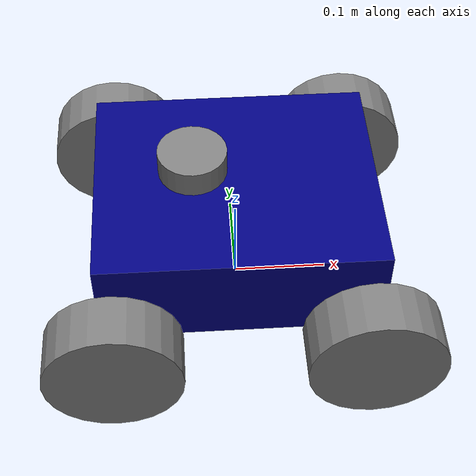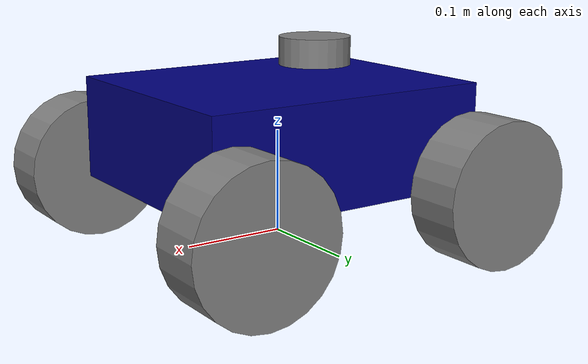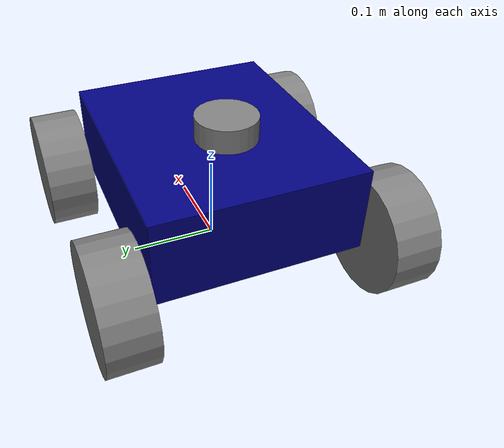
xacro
<?xml version="1.0"?>
<robot name="yardguard" xmlns:xacro="http://www.ros.org/wiki/xacro">

    <xacro:property name="base_length" value="0.288" />
    <xacro:property name="base_width" value="0.240" />
    <xacro:property name="base_height" value="0.100" />

    <xacro:property name="wheel_radius" value="0.070" />
    <xacro:property name="wheel_height" value="0.055" />

    <xacro:property name="joint_length" value="0.130" />
    <xacro:property name="joint_width" value="0.155" />
    <xacro:property name="joint_height" value="0.045" />

    <material name="grey">
        <color rgba="0.5 0.5 0.5 1" />
    </material>

    <material name="blue">
        <color rgba="0 0 0.5 1" />
    </material>

    <!-- base_footprint (projection of base_link on the ground) -->

    <link name="base_footprint"/>

    <joint name="base_joint" type="fixed">
        <parent link="base_footprint"/>
        <child link="base_link"/>
        <origin xyz="0 0 ${((base_height / 2) - .02) + wheel_radius}" rpy="0 0 0"/>
    </joint>

    <!-- base_link and base_scan (required for Nav2) -->

    <link name="base_link">
        <visual>
            <geometry>
                <box size="${base_length} ${base_width} ${base_height}" />
            </geometry>
            <origin xyz="0 0 0" rpy="0 0 0" />
            <material name="blue" />
        </visual>
    </link>

    <joint name="base_scan_joint" type="fixed">
        <parent link="base_link"/>
        <child link="base_scan"/>
        <origin xyz="-${base_length * 0.15} 0 0.075" rpy="0 0 0"/>
    </joint>

    <link name="base_scan">
        <visual>
            <geometry>
                <cylinder radius="${wheel_radius / 2}" length="${wheel_height / 2}"/>
            </geometry>
            <origin xyz="0 0 0" rpy="0 0 0" />
            <material name="grey" />
        </visual>
    </link>

    <!-- Wheels (2 differential wheels + 1 caster wheel to keep the balance) -->

    <joint name="back_left_wheel_joint" type="continuous">
        <parent link="base_link"/>
        <child link="back_left_wheel"/>
        <origin xyz="-${joint_length} ${joint_width} -${joint_height}" rpy="0 0 0"/>
        <axis xyz="0 1 0"/>
    </joint>

    <link name="back_left_wheel">
        <visual>
            <geometry>
                <cylinder radius="${wheel_radius}" length="${wheel_height}"/>
            </geometry>
            <origin xyz="0 0 0" rpy="1.57 0 0" />
            <material name="grey" />
        </visual>
    </link>

    <joint name="back_right_wheel_joint" type="continuous">
        <parent link="base_link"/>
        <child link="back_right_wheel"/>
        <origin xyz="-${joint_length} -${joint_width} -${joint_height}" rpy="0 0 0"/>
        <axis xyz="0 1 0"/>
    </joint>

    <link name="back_right_wheel">
        <visual>
            <geometry>
                <cylinder radius="${wheel_radius}" length="${wheel_height}"/>
            </geometry>
            <origin xyz="0 0 0" rpy="1.57 0 0" />
            <material name="grey" />
        </visual>
    </link>

    <joint name="front_right_wheel_joint" type="continuous">
        <parent link="base_link"/>
        <child link="front_right_wheel"/>
        <origin xyz="${joint_length} -${joint_width} -${joint_height}" rpy="0 0 0"/>
        <axis xyz="0 1 0"/>
    </joint>

    <link name="front_right_wheel">
        <visual>
            <geometry>
                <cylinder radius="${wheel_radius}" length="${wheel_height}"/>
            </geometry>
            <origin xyz="0 0 0" rpy="1.57 0 0" />
            <material name="grey" />
        </visual>
    </link>

    <joint name="front_left_wheel_joint" type="continuous">
        <parent link="base_link"/>
        <child link="front_left_wheel"/>
        <origin xyz="${joint_length} ${joint_width} -${joint_height}" rpy="0 0 0"/>
        <axis xyz="0 1 0"/>
    </joint>

    <link name="front_left_wheel">
        <visual>
            <geometry>
                <cylinder radius="${wheel_radius}" length="${wheel_height}"/>
            </geometry>
            <origin xyz="0 0 0" rpy="1.57 0 0" />
            <material name="grey" />
        </visual>
    </link>

</robot>
